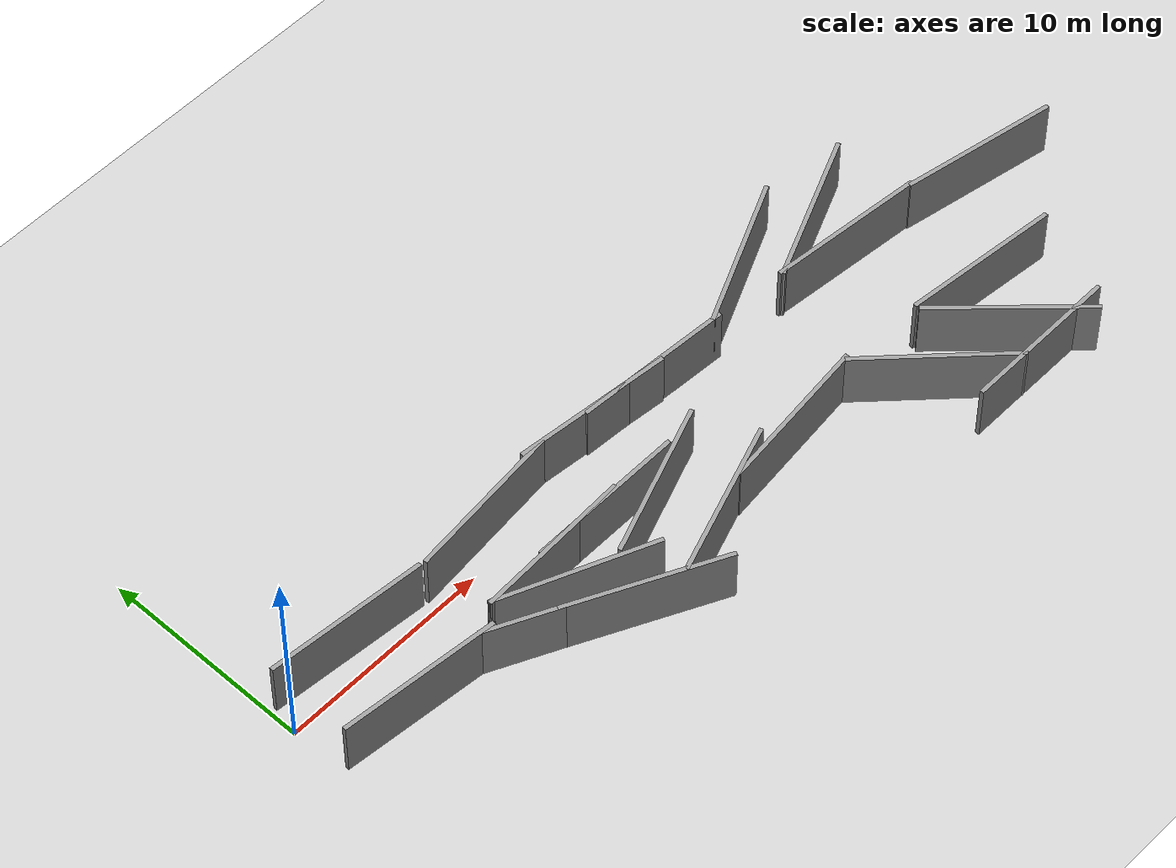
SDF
<sdf version="1.4">
 <world name="default">
  <model name="ground_plane">
   <static>1</static>
   <link name="link">
    <collision name="collision">
     <geometry><plane><normal>0 0 1</normal><size>100 100</size></plane></geometry>
     <surface><friction><ode><mu>100</mu><mu2>50</mu2></ode></friction></surface>
    </collision>
    <visual name="visual">
     <cast_shadows>0</cast_shadows>
     <geometry><plane><normal>0 0 1</normal><size>100 100</size></plane></geometry>
     <material>
      <script><uri>file://media/materials/scripts/gazebo.material</uri><name>Gazebo/Grey</name></script>
     </material>
    </visual>
    <velocity_decay><linear>0</linear><angular>0</angular></velocity_decay>
   </link>
  </model>
  <model name="grey_wall">
   <static>1</static>
   <link name="link">
    <pose>0 0 1.4 0 -0 0</pose>
    <collision name="collision"><geometry><box><size>7.5 0.2 2.8</size></box></geometry></collision>
    <visual name="visual">
     <cast_shadows>0</cast_shadows>
     <geometry><box><size>7.5 0.2 2.8</size></box></geometry>
     <material>
      <script>
       <uri>model://grey_wall/materials/scripts</uri>
       <uri>model://grey_wall/materials/textures</uri>
       <name>vrc/grey_wall</name>
      </script>
     </material>
    </visual>
    <velocity_decay><linear>0</linear><angular>0</angular></velocity_decay>
   </link>
   <pose>4 1 0 0 0 -0.096447</pose>
  </model>
  <model name="grey_wall_0">
   <static>1</static>
   <link name="link">
    <pose>0 0 1.4 0 -0 0</pose>
    <collision name="collision"><geometry><box><size>7.5 0.2 2.8</size></box></geometry></collision>
    <visual name="visual">
     <cast_shadows>0</cast_shadows>
     <geometry><box><size>7.5 0.2 2.8</size></box></geometry>
     <material>
      <script>
       <uri>model://grey_wall/materials/scripts</uri>
       <uri>model://grey_wall/materials/textures</uri>
       <name>vrc/grey_wall</name>
      </script>
     </material>
    </visual>
    <velocity_decay><linear>0</linear><angular>0</angular></velocity_decay>
   </link>
   <pose>4 -3 0 0 0 -0.105359</pose>
  </model>
  <model name="grey_wall_5">
   <static>1</static>
   <link name="link">
    <pose>0 0 1.4 0 -0 0</pose>
    <collision name="collision"><geometry><box><size>7.5 0.2 2.8</size></box></geometry></collision>
    <visual name="visual">
     <cast_shadows>0</cast_shadows>
     <geometry><box><size>7.5 0.2 2.8</size></box></geometry>
     <material>
      <script>
       <uri>model://grey_wall/materials/scripts</uri>
       <uri>model://grey_wall/materials/textures</uri>
       <name>vrc/grey_wall</name>
      </script>
     </material>
    </visual>
    <velocity_decay><linear>0</linear><angular>0</angular></velocity_decay>
   </link>
   <pose>11.6633 0.935781 0 0 -0 0.095119</pose>
  </model>
  <model name="grey_wall_6">
   <static>1</static>
   <link name="link">
    <pose>0 0 1.4 0 -0 0</pose>
    <collision name="collision"><geometry><box><size>7.5 0.2 2.8</size></box></geometry></collision>
    <visual name="visual">
     <cast_shadows>0</cast_shadows>
     <geometry><box><size>7.5 0.2 2.8</size></box></geometry>
     <material>
      <script>
       <uri>model://grey_wall/materials/scripts</uri>
       <uri>model://grey_wall/materials/textures</uri>
       <name>vrc/grey_wall</name>
      </script>
     </material>
    </visual>
    <velocity_decay><linear>0</linear><angular>0</angular></velocity_decay>
   </link>
   <pose>12 -2.50054 0 0 -0 0.039385</pose>
  </model>
  <model name="grey_wall_7">
   <static>1</static>
   <link name="link">
    <pose>0 0 1.4 0 -0 0</pose>
    <collision name="collision"><geometry><box><size>7.5 0.2 2.8</size></box></geometry></collision>
    <visual name="visual">
     <cast_shadows>0</cast_shadows>
     <geometry><box><size>7.5 0.2 2.8</size></box></geometry>
     <material>
      <script>
       <uri>model://grey_wall/materials/scripts</uri>
       <uri>model://grey_wall/materials/textures</uri>
       <name>vrc/grey_wall</name>
      </script>
     </material>
    </visual>
    <velocity_decay><linear>0</linear><angular>0</angular></velocity_decay>
   </link>
   <pose>11.6997 -4.04956 -0 0 0 -0.406682</pose>
  </model>
  <model name="grey_wall_8">
   <static>1</static>
   <link name="link">
    <pose>0 0 1.4 0 -0 0</pose>
    <collision name="collision"><geometry><box><size>7.5 0.2 2.8</size></box></geometry></collision>
    <visual name="visual">
     <cast_shadows>0</cast_shadows>
     <geometry><box><size>7.5 0.2 2.8</size></box></geometry>
     <material>
      <script>
       <uri>model://grey_wall/materials/scripts</uri>
       <uri>model://grey_wall/materials/textures</uri>
       <name>vrc/grey_wall</name>
      </script>
     </material>
    </visual>
    <velocity_decay><linear>0</linear><angular>0</angular></velocity_decay>
   </link>
   <pose>10.3004 -4.92524 0 0 0 -0.455487</pose>
  </model>
  <model name="grey_wall_9">
   <static>1</static>
   <link name="link">
    <pose>0 0 1.4 0 -0 0</pose>
    <collision name="collision"><geometry><box><size>7.5 0.2 2.8</size></box></geometry></collision>
    <visual name="visual">
     <cast_shadows>0</cast_shadows>
     <geometry><box><size>7.5 0.2 2.8</size></box></geometry>
     <material>
      <script>
       <uri>model://grey_wall/materials/scripts</uri>
       <uri>model://grey_wall/materials/textures</uri>
       <name>vrc/grey_wall</name>
      </script>
     </material>
    </visual>
    <velocity_decay><linear>0</linear><angular>0</angular></velocity_decay>
   </link>
   <pose>17.0801 -3.326 0 0 -0 0.351167</pose>
  </model>
  <model name="grey_wall_10">
   <static>1</static>
   <link name="link">
    <pose>0 0 1.4 0 -0 0</pose>
    <collision name="collision"><geometry><box><size>7.5 0.2 2.8</size></box></geometry></collision>
    <visual name="visual">
     <cast_shadows>0</cast_shadows>
     <geometry><box><size>7.5 0.2 2.8</size></box></geometry>
     <material>
      <script>
       <uri>model://grey_wall/materials/scripts</uri>
       <uri>model://grey_wall/materials/textures</uri>
       <name>vrc/grey_wall</name>
      </script>
     </material>
    </visual>
    <velocity_decay><linear>0</linear><angular>0</angular></velocity_decay>
   </link>
   <pose>13.2437 -6.39944 0 0 0 -0.464024</pose>
  </model>
  <model name="grey_wall_11">
   <static>1</static>
   <link name="link">
    <pose>0 0 1.4 0 -0 0</pose>
    <collision name="collision"><geometry><box><size>7.5 0.2 2.8</size></box></geometry></collision>
    <visual name="visual">
     <cast_shadows>0</cast_shadows>
     <geometry><box><size>7.5 0.2 2.8</size></box></geometry>
     <material>
      <script>
       <uri>model://grey_wall/materials/scripts</uri>
       <uri>model://grey_wall/materials/textures</uri>
       <name>vrc/grey_wall</name>
      </script>
     </material>
    </visual>
    <velocity_decay><linear>0</linear><angular>0</angular></velocity_decay>
   </link>
   <pose>18.2468 -5.93599 -0 0 -0 0.328684</pose>
  </model>
  <model name="grey_wall_12">
   <static>1</static>
   <link name="link">
    <pose>0 0 1.4 0 -0 0</pose>
    <collision name="collision"><geometry><box><size>7.5 0.2 2.8</size></box></geometry></collision>
    <visual name="visual">
     <cast_shadows>0</cast_shadows>
     <geometry><box><size>7.5 0.2 2.8</size></box></geometry>
     <material>
      <script>
       <uri>model://grey_wall/materials/scripts</uri>
       <uri>model://grey_wall/materials/textures</uri>
       <name>vrc/grey_wall</name>
      </script>
     </material>
    </visual>
    <velocity_decay><linear>0</linear><angular>0</angular></velocity_decay>
   </link>
   <pose>15.0699 -2.44335 0 0 -0 0</pose>
  </model>
  <model name="grey_wall_13">
   <static>1</static>
   <link name="link">
    <pose>0 0 1.4 0 -0 0</pose>
    <collision name="collision"><geometry><box><size>7.5 0.2 2.8</size></box></geometry></collision>
    <visual name="visual">
     <cast_shadows>0</cast_shadows>
     <geometry><box><size>7.5 0.2 2.8</size></box></geometry>
     <material>
      <script>
       <uri>model://grey_wall/materials/scripts</uri>
       <uri>model://grey_wall/materials/textures</uri>
       <name>vrc/grey_wall</name>
      </script>
     </material>
    </visual>
    <velocity_decay><linear>0</linear><angular>0</angular></velocity_decay>
   </link>
   <pose>18 1 0 0 0 -0.108822</pose>
  </model>
  <model name="grey_wall_14">
   <static>1</static>
   <link name="link">
    <pose>0 0 1.4 0 -0 0</pose>
    <collision name="collision"><geometry><box><size>7.5 0.2 2.8</size></box></geometry></collision>
    <visual name="visual">
     <cast_shadows>0</cast_shadows>
     <geometry><box><size>7.5 0.2 2.8</size></box></geometry>
     <material>
      <script>
       <uri>model://grey_wall/materials/scripts</uri>
       <uri>model://grey_wall/materials/textures</uri>
       <name>vrc/grey_wall</name>
      </script>
     </material>
    </visual>
    <velocity_decay><linear>0</linear><angular>0</angular></velocity_decay>
   </link>
   <pose>21.294 0.694096 -0 0 0 -0.071412</pose>
  </model>
  <model name="grey_wall_15">
   <static>1</static>
   <link name="link">
    <pose>0 0 1.4 0 -0 0</pose>
    <collision name="collision"><geometry><box><size>7.5 0.2 2.8</size></box></geometry></collision>
    <visual name="visual">
     <cast_shadows>0</cast_shadows>
     <geometry><box><size>7.5 0.2 2.8</size></box></geometry>
     <material>
      <script>
       <uri>model://grey_wall/materials/scripts</uri>
       <uri>model://grey_wall/materials/textures</uri>
       <name>vrc/grey_wall</name>
      </script>
     </material>
    </visual>
    <velocity_decay><linear>0</linear><angular>0</angular></velocity_decay>
   </link>
   <pose>32.0009 -0.336757 -0 0 0 -0.10524</pose>
  </model>
  <model name="grey_wall_16">
   <static>1</static>
   <link name="link">
    <pose>0 0 1.4 0 -0 0</pose>
    <collision name="collision"><geometry><box><size>7.5 0.2 2.8</size></box></geometry></collision>
    <visual name="visual">
     <cast_shadows>0</cast_shadows>
     <geometry><box><size>7.5 0.2 2.8</size></box></geometry>
     <material>
      <script>
       <uri>model://grey_wall/materials/scripts</uri>
       <uri>model://grey_wall/materials/textures</uri>
       <name>vrc/grey_wall</name>
      </script>
     </material>
    </visual>
    <velocity_decay><linear>0</linear><angular>0</angular></velocity_decay>
   </link>
   <pose>39.2069 -1.49567 0 0 0 -0.194563</pose>
  </model>
  <model name="grey_wall_24">
   <static>1</static>
   <link name="link">
    <pose>0 0 1.4 0 -0 0</pose>
    <collision name="collision"><geometry><box><size>7.5 0.2 2.8</size></box></geometry></collision>
    <visual name="visual">
     <cast_shadows>0</cast_shadows>
     <geometry><box><size>7.5 0.2 2.8</size></box></geometry>
     <material>
      <script>
       <uri>model://grey_wall/materials/scripts</uri>
       <uri>model://grey_wall/materials/textures</uri>
       <name>vrc/grey_wall</name>
      </script>
     </material>
    </visual>
    <velocity_decay><linear>0</linear><angular>0</angular></velocity_decay>
   </link>
   <pose>23.2389 -5.17008 -0 0 -0 0.102073</pose>
  </model>
  <model name="grey_wall_25">
   <static>1</static>
   <link name="link">
    <pose>0 0 1.4 0 -0 0</pose>
    <collision name="collision"><geometry><box><size>7.5 0.2 2.8</size></box></geometry></collision>
    <visual name="visual">
     <cast_shadows>0</cast_shadows>
     <geometry><box><size>7.5 0.2 2.8</size></box></geometry>
     <material>
      <script>
       <uri>model://grey_wall/materials/scripts</uri>
       <uri>model://grey_wall/materials/textures</uri>
       <name>vrc/grey_wall</name>
      </script>
     </material>
    </visual>
    <velocity_decay><linear>0</linear><angular>0</angular></velocity_decay>
   </link>
   <pose>29.4056 -7.45475 0 0 0 -0.774963</pose>
  </model>
  <model name="grey_wall_26">
   <static>1</static>
   <link name="link">
    <pose>0 0 1.4 0 -0 0</pose>
    <collision name="collision"><geometry><box><size>7.5 0.2 2.8</size></box></geometry></collision>
    <visual name="visual">
     <cast_shadows>0</cast_shadows>
     <geometry><box><size>7.5 0.2 2.8</size></box></geometry>
     <material>
      <script>
       <uri>model://grey_wall/materials/scripts</uri>
       <uri>model://grey_wall/materials/textures</uri>
       <name>vrc/grey_wall</name>
      </script>
     </material>
    </visual>
    <velocity_decay><linear>0</linear><angular>0</angular></velocity_decay>
   </link>
   <pose>33.4081 -8.04448 0 0 0 -0.809073</pose>
  </model>
  <model name="grey_wall_27">
   <static>1</static>
   <link name="link">
    <pose>0 0 1.4 0 -0 0</pose>
    <collision name="collision"><geometry><box><size>7.5 0.2 2.8</size></box></geometry></collision>
    <visual name="visual">
     <cast_shadows>0</cast_shadows>
     <geometry><box><size>7.5 0.2 2.8</size></box></geometry>
     <material>
      <script>
       <uri>model://grey_wall/materials/scripts</uri>
       <uri>model://grey_wall/materials/textures</uri>
       <name>vrc/grey_wall</name>
      </script>
     </material>
    </visual>
    <velocity_decay><linear>0</linear><angular>0</angular></velocity_decay>
   </link>
   <pose>34.5235 -5.54637 0 0 0 -0.111396</pose>
  </model>
  <model name="grey_wall_35">
   <static>1</static>
   <link name="link">
    <pose>0 0 1.4 0 -0 0</pose>
    <collision name="collision"><geometry><box><size>7.5 0.2 2.8</size></box></geometry></collision>
    <visual name="visual">
     <cast_shadows>0</cast_shadows>
     <geometry><box><size>7.5 0.2 2.8</size></box></geometry>
     <material>
      <script>
       <uri>model://grey_wall/materials/scripts</uri>
       <uri>model://grey_wall/materials/textures</uri>
       <name>vrc/grey_wall</name>
      </script>
     </material>
    </visual>
    <velocity_decay><linear>0</linear><angular>0</angular></velocity_decay>
   </link>
   <pose>33 -10 0 0 -0 0</pose>
  </model>
  <model name="grey_wall_40">
   <static>1</static>
   <link name="link">
    <pose>0 0 1.4 0 -0 0</pose>
    <collision name="collision"><geometry><box><size>7.5 0.2 2.8</size></box></geometry></collision>
    <visual name="visual">
     <cast_shadows>0</cast_shadows>
     <geometry><box><size>7.5 0.2 2.8</size></box></geometry>
     <material>
      <script>
       <uri>model://grey_wall/materials/scripts</uri>
       <uri>model://grey_wall/materials/textures</uri>
       <name>vrc/grey_wall</name>
      </script>
     </material>
    </visual>
    <velocity_decay><linear>0</linear><angular>0</angular></velocity_decay>
   </link>
   <pose>28 2 0 0 -0 0.429583</pose>
  </model>
  <model name="grey_wall_41">
   <static>1</static>
   <link name="link">
    <pose>0 0 1.4 0 -0 0</pose>
    <collision name="collision"><geometry><box><size>7.5 0.2 2.8</size></box></geometry></collision>
    <visual name="visual">
     <cast_shadows>0</cast_shadows>
     <geometry><box><size>7.5 0.2 2.8</size></box></geometry>
     <material>
      <script>
       <uri>model://grey_wall/materials/scripts</uri>
       <uri>model://grey_wall/materials/textures</uri>
       <name>vrc/grey_wall</name>
      </script>
     </material>
    </visual>
    <velocity_decay><linear>0</linear><angular>0</angular></velocity_decay>
   </link>
   <pose>31.7946 1.43009 -0 0 -0 0.408837</pose>
  </model>
 </world>
</sdf>
